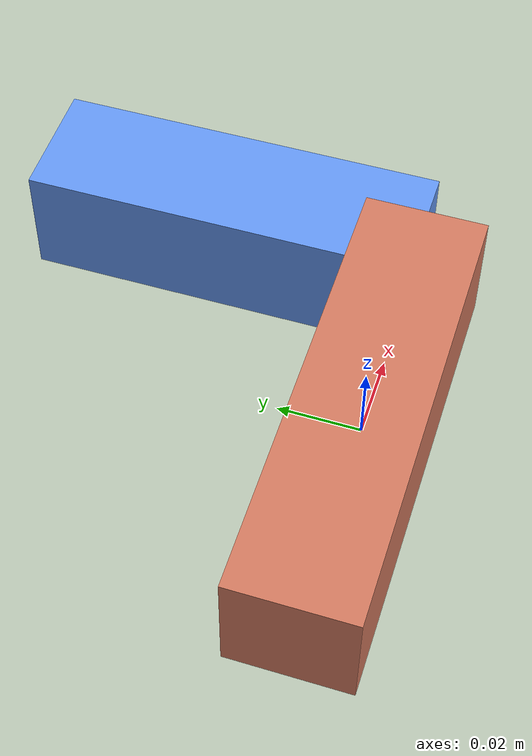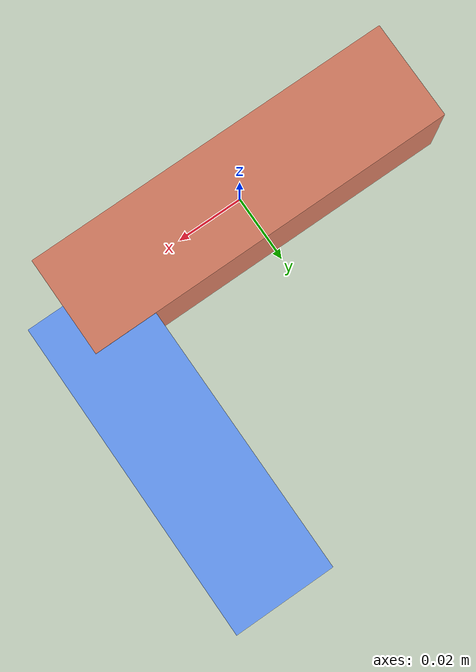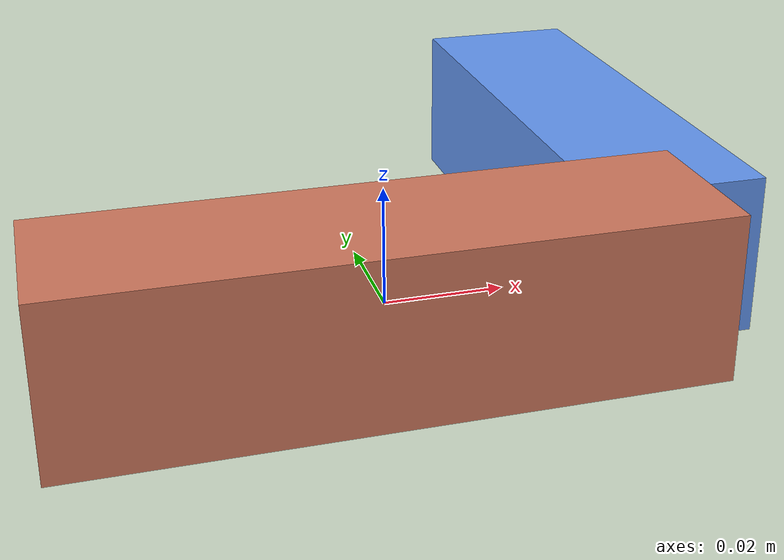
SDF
<sdf version="1.4"><world name="default"><model name="object0"><link name="link1"><pose>0 0 0 0 0 0</pose><inertial><pose>0 0 0 0 0 0</pose><mass>0.060503716148231336</mass><inertia><ixx>9.0755574222347e-06</ixx><ixy>0</ixy><iyy>6.783394172015186e-05</iyy><ixz>0</ixz><iyz>0</iyz><izz>6.783394172015186e-05</izz></inertia></inertial><visual name="link1_visual"><pose>0 0  0 0 0 0</pose><geometry><box><size>0.11204391879302099 0.03 0.03</size></box></geometry><material><diffuse>0.8280797762760157 0.47941479680801624 0.3748947017185531 1</diffuse></material></visual><collision><pose>0 0  0 0 0 0</pose><geometry><box><size>0.11204391879302099 0.03 0.03</size></box></geometry></collision></link><link name="link2"><pose>0.052038178248403545 0.047267778517910614 0 0 0 0</pose><inertial><pose>0 0 0 0 0 0</pose><mass>0.05145931072488283</mass><inertia><ixx>4.254887725105514e-05</ixx><ixy>0</ixy><iyy>7.46588833100175e-06</iyy><ixz>0</ixz><iyz>0</iyz><izz>4.280188552878581e-05</izz></inertia></inertial><visual name="link2_visual"><pose>0 0  0 0 0 0</pose><geometry><box><size>0.03 0.09529501986089414 0.028999999999999998</size></box></geometry><material><diffuse>0.39371517997040606 0.5980159161686646 0.9584908804060481 1</diffuse></material></visual><collision><pose>0 0  0 0 0 0</pose><geometry><box><size>0.03 0.09529501986089414 0.028999999999999998</size></box></geometry></collision></link><joint name="link_joint_0" type="fixed"><parent>link1</parent><child>link2</child><pose>0 0 0 0 0 0</pose><axis><xyz>0 0 1</xyz></axis></joint></model></world></sdf>
